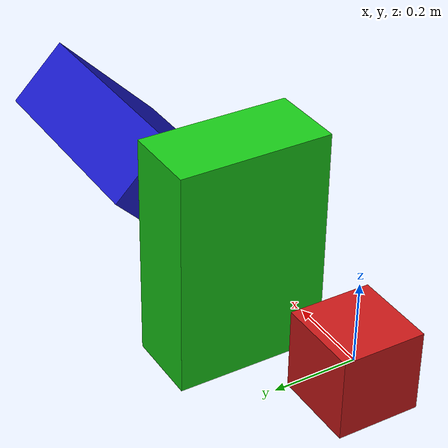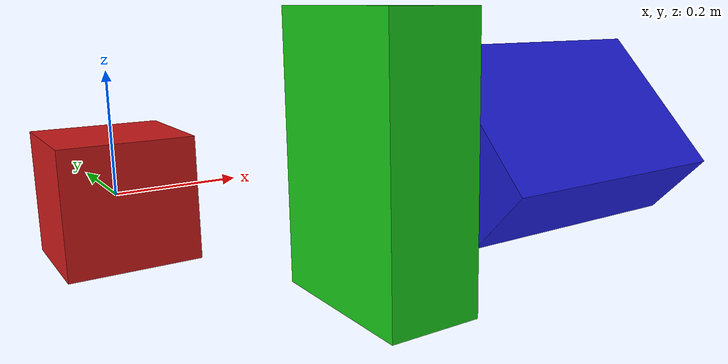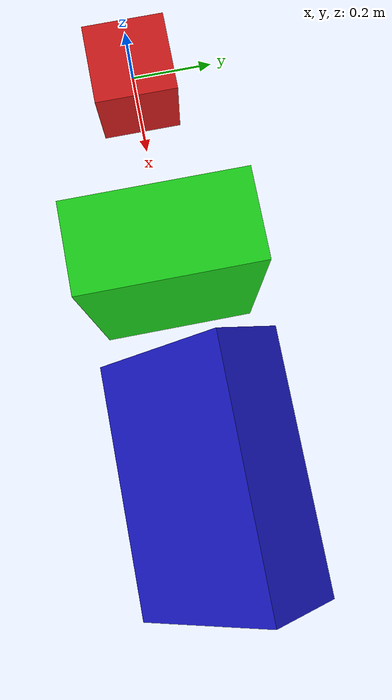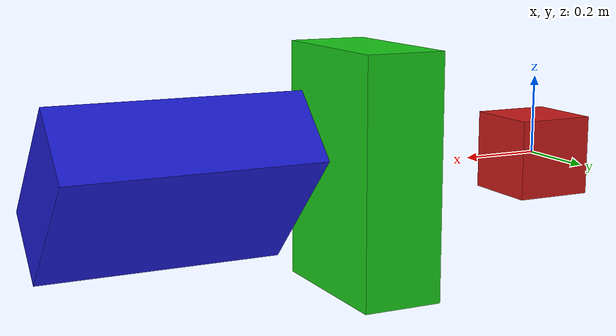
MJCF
<mujoco>

<default>
    <joint axis = "0 0 1" type = "hinge" limited = "false" damping = "0.2"/>
</default>

<worldbody>
    <light name = "top" pos ="0 0 1"/>
    <body name = "body1" pos = "0 0 0">
        <joint name ="joint1_z"/>
        <joint name ="joint1_x" axis = "1 0 0"/>
        <joint name ="joint1_y" axis = "0 1 0"/>
        <geom size = ".1 .1 .1" type = "box" rgba=".8 .1 .1 1"/>
    </body>
    <body name = "body2" pos = ".5 0 0" euler="0 0 0">
        <joint name ="joint2"/>
        <geom size = ".1 .2 .3" type = "box" rgba=".1 .8 .1 1"/>
    </body>
    <body name = "body3" pos = "1.0 0 0" euler="45 0 0">
        <joint name ="joint3" axis = "1 0 0" springdamper = "1 1"/>
        <geom size = ".3 .2 .1" type = "box" rgba=".1 .1 .8 1"/>
    </body>
</worldbody>

<actuator>
    <position name ="act1_x" joint="joint1_x"/>
    <position name ="act1_y" joint="joint1_y"/>
    <position name ="act1_z" joint="joint1_z"/>
    <position name ="act2" joint="joint2"/>
    <position name ="act3" joint="joint3"/>
</actuator>

</mujoco>
